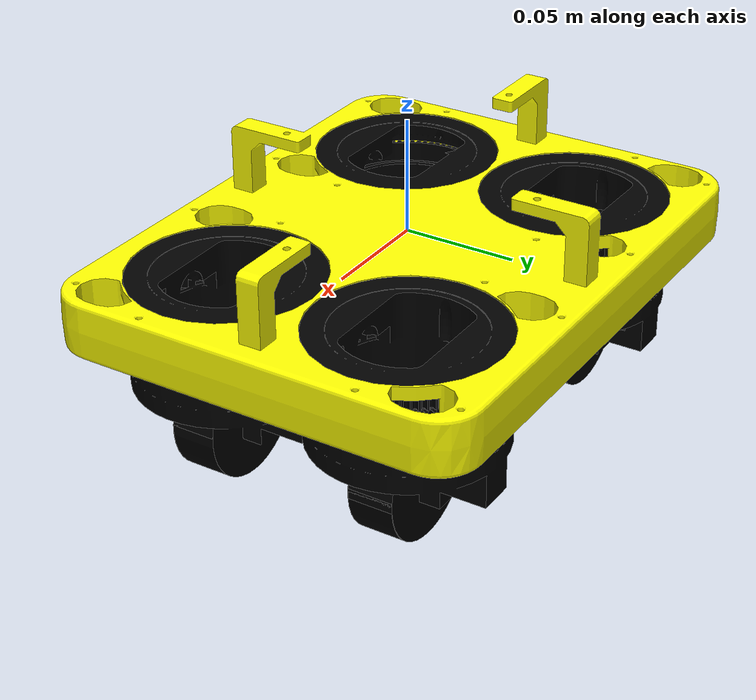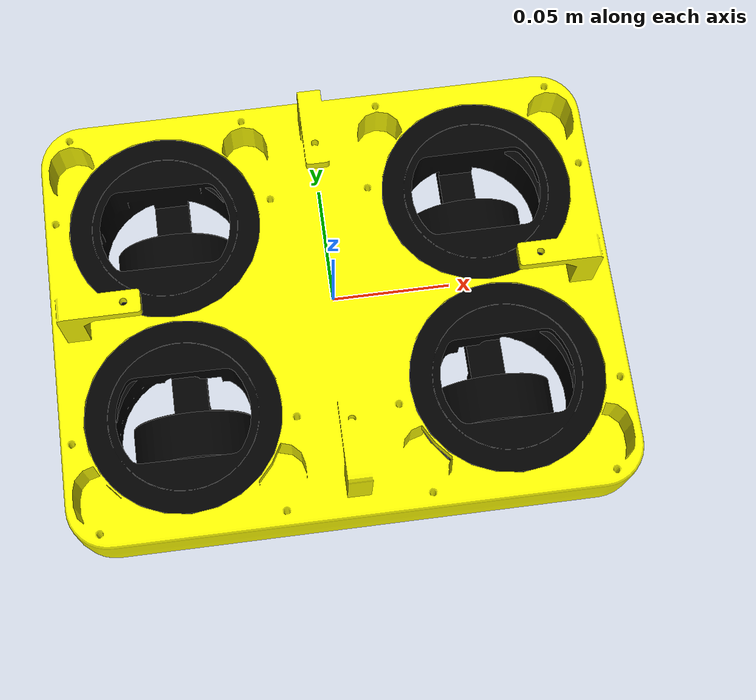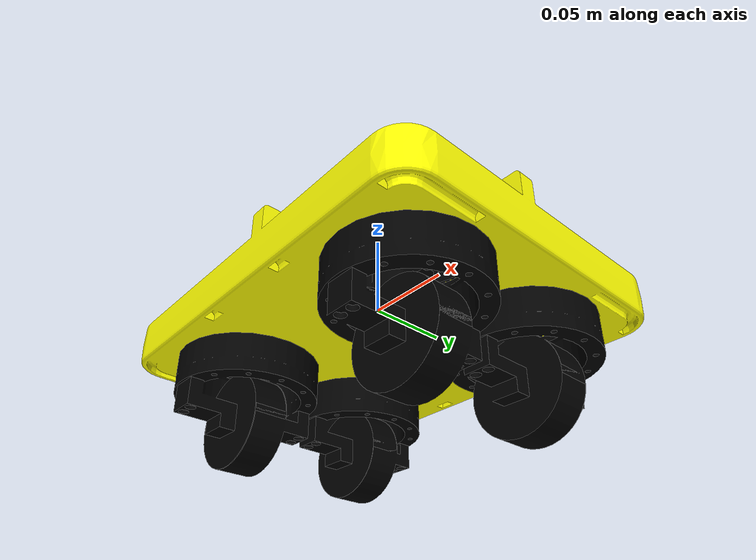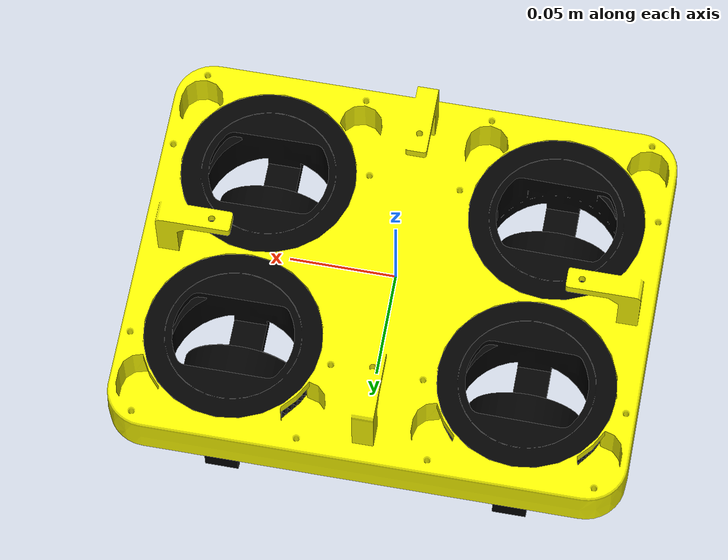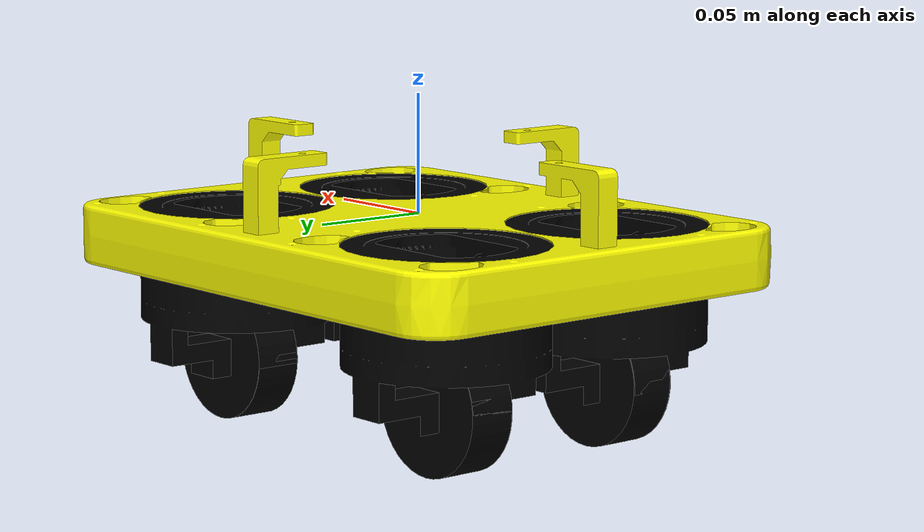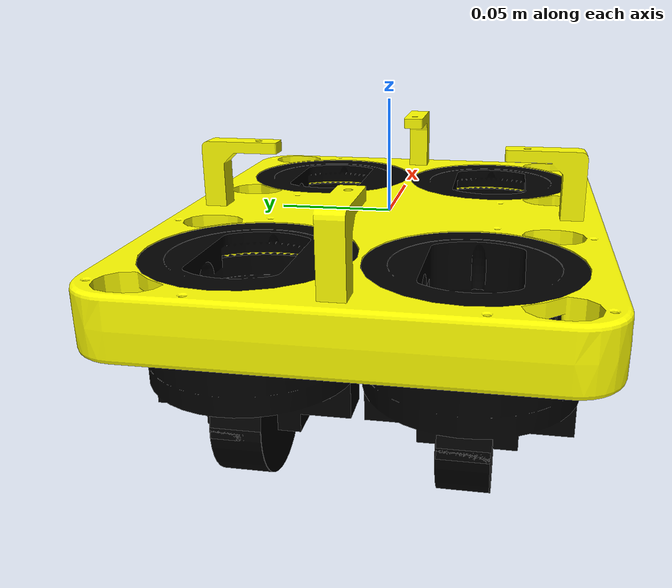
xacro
<?xml version="1.0"?>
<robot xmlns:xacro="http://www.ros.org/wiki/xacro" name="testAMR7">

    <!-- Default: use_sim=true (Gazebo simulation)
         For real hardware: pass use_sim:=false in launch file or xacro command -->

    <xacro:arg name="use_sim" default="true"/>
    <xacro:arg name="arduino_port" default="/dev/ttyACM0"/>

    <!-- Keeping Pi for future use cases -->
    <xacro:property name="PI" value="3.1416"/>

    <!-- Wheel properties for inertia calculation -->
    <xacro:property name="wheel_sphere_radius" value="0.028"/>  <!-- working value-slightly larger than visual mesh, -->
    <xacro:property name="wheel_mass" value="0.6"/> <!-- working value -->

    <!-- Base link friction -->
    <xacro:property name="base_mu1" value="0.2"/>
    <xacro:property name="base_mu2" value="0.2"/>

    <!-- Steering links friction (minimal for free rotation) -->
    <xacro:property name="steer_mu1" value="0.01"/>
    <xacro:property name="steer_mu2" value="0.01"/>

    <!-- Wheel links friction - INCREASED FOR TRACTION -->
    <xacro:property name="wheel_mu1" value="10.0"/> <!-- working value -->
    <xacro:property name="wheel_mu2" value="10.0"/> <!-- working value -->

    <!-- Wheel joint dynamics - REDUCED RESISTANCE -->
    <xacro:property name="wheel_joint_damping" value="0.001"/>
    <xacro:property name="wheel_joint_friction" value="0.001"/>

    <!-- Wheel contact properties -->
    <xacro:property name="wheel_kp" value="10000000.0"/>  <!-- this works better -->
    <xacro:property name="wheel_kd" value="1.0"/>
    <xacro:property name="wheel_min_depth" value="0.0001"/>
    <xacro:property name="wheel_max_vel" value="10.0"/>

    <!-- INERTIA FORMULAS FOR SPHERE
         For a sphere:
         Ixx = Iyy = Izz = (2/5) * m * r²
    -->
    <xacro:property name="wheel_ixx" value="${(2.0/5.0) * wheel_mass * wheel_sphere_radius * wheel_sphere_radius}"/>
    <xacro:property name="wheel_iyy" value="${(2.0/5.0) * wheel_mass * wheel_sphere_radius * wheel_sphere_radius}"/>
    <xacro:property name="wheel_izz" value="${(2.0/5.0) * wheel_mass * wheel_sphere_radius * wheel_sphere_radius}"/>

    <!-- Define different colors -->

    <material name="black">
        <color rgba="0.0 0.0 0.0 1.0" />
    </material>

    <material name="blue">
        <color rgba="0.0 0.0 0.8 1.0" />
    </material>

    <material name="green">
        <color rgba="0.0 0.8 0.0 1.0" />
    </material>

    <material name="red">
        <color rgba="0.8 0.0 0.0 1.0" />
    </material>

    <material name="yellow">
        <color rgba="1.0 1.0 0.0 1.0" />
    </material>

    <material name="grey">
        <color rgba="0.898039215686275 0.917647058823529 0.929411764705882 1" />
    </material>

    <!-- GAZEBO TAGS  -->

    <!-- Base link -->
    <gazebo reference="base_link">
        <material>Gazebo/Yellow</material>
        <mu1>${base_mu1}</mu1>
        <mu2>${base_mu2}</mu2>
        <self_collide>0</self_collide>
    </gazebo>

    <!-- STEERING LINKS - Minimal friction for free rotation -->
    <gazebo reference="link_BR_steer">
        <material>Gazebo/Black</material>
        <mu1>${steer_mu1}</mu1>
        <mu2>${steer_mu2}</mu2>
    </gazebo>

    <gazebo reference="link_FR_steer">
        <material>Gazebo/Black</material>
        <mu1>${steer_mu1}</mu1>
        <mu2>${steer_mu2}</mu2>
    </gazebo>

    <gazebo reference="link_FL_steer">
        <material>Gazebo/Black</material>
        <mu1>${steer_mu1}</mu1>
        <mu2>${steer_mu2}</mu2>
    </gazebo>

    <gazebo reference="link_BL_steer">
        <material>Gazebo/Black</material>
        <mu1>${steer_mu1}</mu1>
        <mu2>${steer_mu2}</mu2>
    </gazebo>

    <!-- WHEEL LINKS - Spherical collision with slip -->
    <gazebo reference="link_BR">
        <material>Gazebo/Black</material>
    </gazebo>

    <gazebo reference="link_FR">
        <material>Gazebo/Black</material>
    </gazebo>

    <gazebo reference="link_FL">
        <material>Gazebo/Black</material>
    </gazebo>

    <gazebo reference="link_BL">
        <material>Gazebo/Black</material>
    </gazebo>

    <!--GAZEBO ROS2 CONTROL PLUGIN (Only loaded in simulation) -->
    <xacro:if value="$(arg use_sim)">
        <gazebo>
            <plugin filename="gz_ros2_control-system" name="gz_ros2_control::GazeboSimROS2ControlPlugin">
                <parameters>$(find testAMR7)/config/omni_base_controller_config.yaml</parameters>
            </plugin>
        </gazebo>
    </xacro:if>

    <!--ROS2_CONTROL HARDWARE INTERFACE

         This section automatically switches between:
         - GazeboSimSystem (when use_sim=true)
         - SwerveArduinoInterface (when use_sim=false) -->

    <ros2_control name="SwerveRobotSystem" type="system">

        <!-- HARDWARE PLUGIN SELECTION -->
        <hardware>
            <!-- Gazebo Simulation -->
            <xacro:if value="$(arg use_sim)">
                <plugin>gz_ros2_control/GazeboSimSystem</plugin>
            </xacro:if>

            <!-- Real Arduino Hardware -->
            <xacro:unless value="$(arg use_sim)">
                <plugin>swerve_arduino_controller/SwerveArduinoInterface</plugin>
                <param name="port">$(arg arduino_port)</param>
                <param name="baud_rate">230400</param>
            </xacro:unless>
        </hardware>

        <!-- STEERING JOINTS (4 continuous revolute joints) -->

        <joint name="joint_BR_steer">
            <command_interface name="position">
                <param name="min">-10</param>
                <param name="max">10</param>
            </command_interface>
            <state_interface name="position"/>
            <state_interface name="velocity"/>
        </joint>

        <joint name="joint_FR_steer">
            <command_interface name="position">
                <param name="min">-10</param>
                <param name="max">10</param>
            </command_interface>
            <state_interface name="position"/>
            <state_interface name="velocity"/>
        </joint>

        <joint name="joint_FL_steer">
            <command_interface name="position">
                <param name="min">-10</param>
                <param name="max">10</param>
            </command_interface>
            <state_interface name="position"/>
            <state_interface name="velocity"/>
        </joint>

        <joint name="joint_BL_steer">
            <command_interface name="position">
                <param name="min">-10</param>
                <param name="max">10</param>
            </command_interface>
            <state_interface name="position"/>
            <state_interface name="velocity"/>
        </joint>

        <!-- WHEEL JOINTS (4 continuous revolute joints) -->

        <joint name="joint_BR">
            <command_interface name="velocity">
                <param name="min">-50</param>
                <param name="max">50</param>
            </command_interface>
            <state_interface name="position"/>
            <state_interface name="velocity"/>
        </joint>

        <joint name="joint_FR">
            <command_interface name="velocity">
                <param name="min">-50</param>
                <param name="max">50</param>
            </command_interface>
            <state_interface name="position"/>
            <state_interface name="velocity"/>
        </joint>

        <joint name="joint_FL">
            <command_interface name="velocity">
                <param name="min">-50</param>
                <param name="max">50</param>
            </command_interface>
            <state_interface name="position"/>
            <state_interface name="velocity"/>
        </joint>

        <joint name="joint_BL">
            <command_interface name="velocity">
                <param name="min">-50</param>
                <param name="max">50</param>
            </command_interface>
            <state_interface name="position"/>
            <state_interface name="velocity"/>
        </joint>
    </ros2_control>

    <!-- ROBOT LINKS AND JOINTS -->

    <!-- BASE LINK -->
    <link name="base_link">
        <inertial>
            <origin xyz="0 0 -0.0119595003073567" rpy="0 0 0" />
            <mass value="1.57057930536749" />
            <inertia
                ixx="0.00538605542529851"
                ixy="0"
                ixz="0"
                iyy="0.00693865152644874"
                iyz="0"
                izz="0.0120646433026368" />
        </inertial>
        <visual>
            <origin xyz="0 0 0" rpy="0 0 0" />
            <geometry>
                <mesh filename="package://testAMR7/meshes/base_link.STL" />
            </geometry>
            <material name="yellow"/>
        </visual>
        <collision>
            <origin xyz="0 0 0" rpy="0 0 0" />
            <geometry>
                <mesh filename="package://testAMR7/meshes/base_link.STL" />
            </geometry>
        </collision>
    </link>

    <!-- Steering link -->
    <link name="link_BR_steer">
        <inertial>
            <origin xyz="0 0 -0.0385810917612286" rpy="0 0 0" />
            <mass value="0.365838838071492" />
            <inertia
                ixx="0.000196145987384263"
                ixy="0"
                ixz="0"
                iyy="0.000205378343467889"
                iyz="0"
                izz="0.00033595536094981" />
        </inertial>
        <visual>
            <origin xyz="0 0 0" rpy="0 0 0" />
            <geometry>
                <mesh filename="package://testAMR7/meshes/link_BR_steer.STL" />
            </geometry>
            <material name="black" />
        </visual>
        <collision>
            <origin xyz="0 0 0" rpy="0 0 0" />
            <geometry>
                <mesh filename="package://testAMR7/meshes/link_BR_steer.STL" />
            </geometry>
        </collision>
    </link>

    <!-- Steering joint -->
    <joint name="joint_BR_steer" type="continuous">
        <origin xyz="0.068865 0.042677 -0.00042426" rpy="0 0 0" />
        <parent link="base_link" />
        <child link="link_BR_steer" />
        <axis xyz="0 0 -1" />
    </joint>

    <link name="link_BR">
        <inertial>
            <origin xyz="0 0 0" rpy="0 0 0" />
            <mass value="${wheel_mass}" />
            <inertia
                ixx="${wheel_ixx}"
                ixy="0"
                ixz="0"
                iyy="${wheel_iyy}"
                iyz="0"
                izz="${wheel_izz}" />
        </inertial>
        <visual>
            <origin xyz="0 0 0" rpy="0 0 0" />
            <geometry>
                <mesh filename="package://testAMR7/meshes/link_BR.STL" />
            </geometry>
            <material name="black" />
        </visual>

        <collision>
            <origin xyz="0 0 0" rpy="0 0 0" />
            <geometry>
                <sphere radius="${wheel_sphere_radius}"/>
            </geometry>
            <surface>
                <friction>
                    <ode>
                        <mu>${wheel_mu1}</mu>
                        <mu2>${wheel_mu2}</mu2>
                        <slip1>0.00001</slip1>
                        <slip2>0.00001</slip2>
                    </ode>
                </friction>
                <contact>
                    <ode>
                        <kp>${wheel_kp}</kp>
                        <kd>${wheel_kd}</kd>
                        <min_depth>${wheel_min_depth}</min_depth>
                        <max_vel>${wheel_max_vel}</max_vel>
                    </ode>
                </contact>
            </surface>
        </collision>
    </link>

    <!-- Wheel joint -->
    <joint name="joint_BR" type="continuous">
        <origin xyz="0 0 -0.063051" rpy="0 0 0" />
        <parent link="link_BR_steer" />
        <child link="link_BR" />
        <axis xyz="0 1 0" />
        <dynamics damping="${wheel_joint_damping}" friction="${wheel_joint_friction}"/>
    </joint>

    <!-- Steering link -->
    <link name="link_FR_steer">
        <inertial>
            <origin xyz="0 0 -0.0385810917631276" rpy="0 0 0" />
            <mass value="0.365838838042616" />
            <inertia
                ixx="0.000196145304534498"
                ixy="0"
                ixz="0"
                iyy="0.000205379017907267"
                iyz="0"
                izz="0.000335955352540065" />
        </inertial>
        <visual>
            <origin xyz="0 0 0" rpy="0 0 0" />
            <geometry>
                <mesh filename="package://testAMR7/meshes/link_FR_steer.STL" />
            </geometry>
            <material name="black" />
        </visual>
        <collision>
            <origin xyz="0 0 0" rpy="0 0 0" />
            <geometry>
                <mesh filename="package://testAMR7/meshes/link_FR_steer.STL" />
            </geometry>
        </collision>
    </link>

    <!-- Steering joint -->
    <joint name="joint_FR_steer" type="continuous">
        <origin xyz="-0.068865 0.042677 -0.00042426" rpy="0 0 0" />
        <parent link="base_link" />
        <child link="link_FR_steer" />
        <axis xyz="0 0 -1" />
    </joint>

    <link name="link_FR">
        <inertial>
            <origin xyz="0 0 0" rpy="0 0 0" />
            <mass value="${wheel_mass}" />
            <inertia
                ixx="${wheel_ixx}"
                ixy="0"
                ixz="0"
                iyy="${wheel_iyy}"
                iyz="0"
                izz="${wheel_izz}" />
        </inertial>
        <visual>
            <origin xyz="0 0 0" rpy="0 0 0" />
            <geometry>
                <mesh filename="package://testAMR7/meshes/link_FR.STL" />
            </geometry>
            <material name="black" />
        </visual>

        <collision>
            <origin xyz="0 0 0" rpy="0 0 0" />
            <geometry>
                <sphere radius="${wheel_sphere_radius}"/>
            </geometry>
            <surface>
                <friction>
                    <ode>
                        <mu>${wheel_mu1}</mu>
                        <mu2>${wheel_mu2}</mu2>
                        <slip1>0.00001</slip1>
                        <slip2>0.00001</slip2>
                    </ode>
                </friction>
                <contact>
                    <ode>
                        <kp>${wheel_kp}</kp>
                        <kd>${wheel_kd}</kd>
                        <min_depth>${wheel_min_depth}</min_depth>
                        <max_vel>${wheel_max_vel}</max_vel>
                    </ode>
                </contact>
            </surface>
        </collision>
    </link>

    <!-- Wheel joint -->
    <joint name="joint_FR" type="continuous">
        <origin xyz="0 0 -0.063051" rpy="0 0 0" />
        <parent link="link_FR_steer" />
        <child link="link_FR" />
        <axis xyz="0 1 0" />
        <dynamics damping="${wheel_joint_damping}" friction="${wheel_joint_friction}"/>
    </joint>

    <!-- Steering link -->
    <link name="link_FL_steer">
        <inertial>
            <origin xyz="0 0 -0.0385810917609336" rpy="0 0 0" />
            <mass value="0.365838838076066" />
            <inertia
                ixx="0.000194978040363627"
                ixy="0"
                ixz="0"
                iyy="0.000206546309895131"
                iyz="0"
                izz="0.000335955378598039" />
        </inertial>
        <visual>
            <origin xyz="0 0 0" rpy="0 0 0" />
            <geometry>
                <mesh filename="package://testAMR7/meshes/link_FL_steer.STL" />
            </geometry>
            <material name="black" />
        </visual>
        <collision>
            <origin xyz="0 0 0" rpy="0 0 0" />
            <geometry>
                <mesh filename="package://testAMR7/meshes/link_FL_steer.STL" />
            </geometry>
        </collision>
    </link>

    <!-- Steering joint -->
    <joint name="joint_FL_steer" type="continuous">
        <origin xyz="-0.068865 -0.042677 -0.00042426" rpy="0 0 0" />
        <parent link="base_link" />
        <child link="link_FL_steer" />
        <axis xyz="0 0 -1" />
    </joint>

    <link name="link_FL">
        <inertial>
            <origin xyz="0 0 0" rpy="0 0 0" />
            <mass value="${wheel_mass}" />
            <inertia
                ixx="${wheel_ixx}"
                ixy="0"
                ixz="0"
                iyy="${wheel_iyy}"
                iyz="0"
                izz="${wheel_izz}" />
        </inertial>
        <visual>
            <origin xyz="0 0 0" rpy="0 0 0" />
            <geometry>
                <mesh filename="package://testAMR7/meshes/link_FL.STL" />
            </geometry>
            <material name="black" />
        </visual>

        <collision>
            <origin xyz="0 0 0" rpy="0 0 0" />
            <geometry>
                <sphere radius="${wheel_sphere_radius}"/>
            </geometry>
            <surface>
                <friction>
                    <ode>
                        <mu>${wheel_mu1}</mu>
                        <mu2>${wheel_mu2}</mu2>
                        <slip1>0.00001</slip1>
                        <slip2>0.00001</slip2>
                    </ode>
                </friction>
                <contact>
                    <ode>
                        <kp>${wheel_kp}</kp>
                        <kd>${wheel_kd}</kd>
                        <min_depth>${wheel_min_depth}</min_depth>
                        <max_vel>${wheel_max_vel}</max_vel>
                    </ode>
                </contact>
            </surface>
        </collision>
    </link>

    <!-- Wheel joint -->
    <joint name="joint_FL" type="continuous">
        <origin xyz="0 0 -0.063051" rpy="0 0 0" />
        <parent link="link_FL_steer" />
        <child link="link_FL" />
        <axis xyz="0 1 0" />
        <dynamics damping="${wheel_joint_damping}" friction="${wheel_joint_friction}"/>
    </joint>

    <!-- Steering link -->
    <link name="link_BL_steer">
        <inertial>
            <origin xyz="0 0 -0.038581091758924" rpy="0 0 0" />
            <mass value="0.365838838105752" />
            <inertia
                ixx="0.000196145621458187"
                ixy="0"
                ixz="0"
                iyy="0.000205378694447075"
                iyz="0"
                izz="0.000335955344243969" />
        </inertial>
        <visual>
            <origin xyz="0 0 0" rpy="0 0 0" />
            <geometry>
                <mesh filename="package://testAMR7/meshes/link_BL_steer.STL" />
            </geometry>
            <material name="black" />
        </visual>
        <collision>
            <origin xyz="0 0 0" rpy="0 0 0" />
            <geometry>
                <mesh filename="package://testAMR7/meshes/link_BL_steer.STL" />
            </geometry>
        </collision>
    </link>

    <!-- Steering joint -->
    <joint name="joint_BL_steer" type="continuous">
        <origin xyz="0.068865 -0.042677 -0.00042426" rpy="0 0 0" />
        <parent link="base_link" />
        <child link="link_BL_steer" />
        <axis xyz="0 0 -1" />
    </joint>

    <link name="link_BL">
        <inertial>
            <origin xyz="0 0 0" rpy="0 0 0" />
            <mass value="${wheel_mass}" />
            <inertia
                ixx="${wheel_ixx}"
                ixy="0"
                ixz="0"
                iyy="${wheel_iyy}"
                iyz="0"
                izz="${wheel_izz}" />
        </inertial>
        <visual>
            <origin xyz="0 0 0" rpy="0 0 0" />
            <geometry>
                <mesh filename="package://testAMR7/meshes/link_BL.STL" />
            </geometry>
            <material name="black" />
        </visual>

        <collision>
            <origin xyz="0 0 0" rpy="0 0 0" />
            <geometry>
                <sphere radius="${wheel_sphere_radius}"/>
            </geometry>
            <surface>
                <friction>
                    <ode>
                        <mu>${wheel_mu1}</mu>
                        <mu2>${wheel_mu2}</mu2>
                        <slip1>0.00001</slip1>
                        <slip2>0.00001</slip2>
                    </ode>
                </friction>
                <contact>
                    <ode>
                        <kp>${wheel_kp}</kp>
                        <kd>${wheel_kd}</kd>
                        <min_depth>${wheel_min_depth}</min_depth>
                        <max_vel>${wheel_max_vel}</max_vel>
                    </ode>
                </contact>
            </surface>
        </collision>
    </link>

    <!-- Wheel joint -->
    <joint name="joint_BL" type="continuous">
        <origin xyz="0 0 -0.063051" rpy="0 0 0" />
        <parent link="link_BL_steer" />
        <child link="link_BL" />
        <axis xyz="0 1 0" />
        <dynamics damping="${wheel_joint_damping}" friction="${wheel_joint_friction}"/>
    </joint>

</robot>
